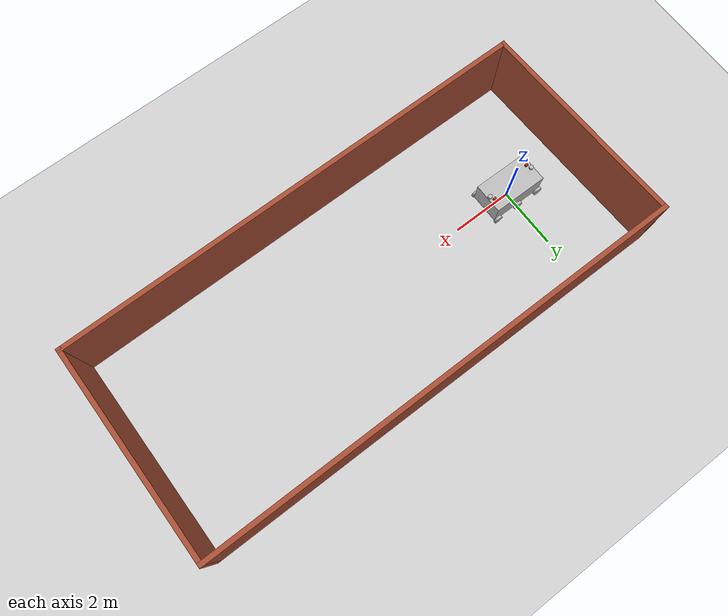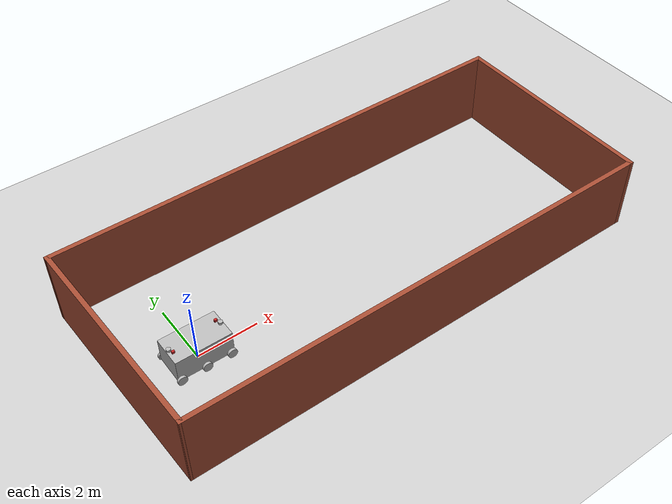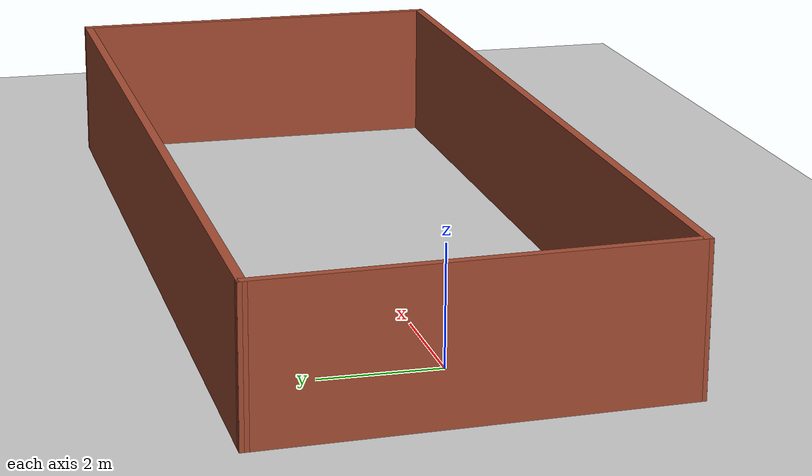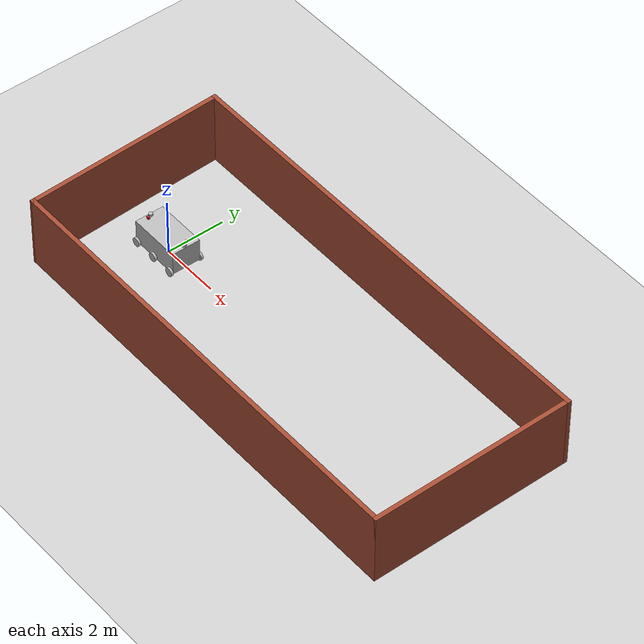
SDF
<sdf version="1.7">
 <world name="default">
  <light name="sun" type="directional">
   <pose>0 0 10 0 -0 0</pose>
   <diffuse>0.8 0.8 0.8 1</diffuse>
   <specular>0.2 0.2 0.2 1</specular>
   <attenuation>
    <range>1000</range>
    <constant>0.9</constant>
    <linear>0.01</linear>
    <quadratic>0.001</quadratic>
   </attenuation>
   <direction>-0.5 0.1 -0.9</direction>
   <spot><inner_angle>0</inner_angle><outer_angle>0</outer_angle><falloff>0</falloff></spot>
  </light>
  <model name="ground_plane">
   <static>1</static>
   <link name="link">
    <collision name="collision">
     <geometry><plane><normal>0 0 1</normal><size>100 100</size></plane></geometry>
     <surface>
      <contact><collide_bitmask>65535</collide_bitmask></contact>
      <friction><ode><mu>100</mu><mu2>50</mu2></ode></friction>
     </surface>
    </collision>
    <visual name="visual">
     <cast_shadows>0</cast_shadows>
     <geometry><plane><normal>0 0 1</normal><size>100 100</size></plane></geometry>
     <material>
      <script><uri>file://media/materials/scripts/gazebo.material</uri><name>Gazebo/Grey</name></script>
     </material>
    </visual>
   </link>
  </model>
  <gravity>0 0 -9.8</gravity>
  <magnetic_field>6e-06 2.3e-05 -4.2e-05</magnetic_field>
  <atmosphere type="adiabatic"/>
  <physics type="ode">
   <max_step_size>0.001</max_step_size>
   <real_time_factor>1</real_time_factor>
   <real_time_update_rate>1000</real_time_update_rate>
  </physics>
  <scene><ambient>0.4 0.4 0.4 1</ambient><background>0.7 0.7 0.7 1</background><shadows>1</shadows></scene>
  <audio><device>default</device></audio>
  <spherical_coordinates>
   <surface_model>EARTH_WGS84</surface_model>
   <latitude_deg>0</latitude_deg>
   <longitude_deg>0</longitude_deg>
   <elevation>0</elevation>
   <heading_deg>0</heading_deg>
  </spherical_coordinates>
  <model name="my_robot">
   <link name="base_footprint">
    <inertial>
     <pose>0 0 0.000732 0 -0 0</pose>
     <mass>120.2</mass>
     <inertia>
      <ixx>12.0387</ixx>
      <ixy>0</ixy>
      <ixz>1.01601e-20</ixz>
      <iyy>12.1732</iyy>
      <iyz>0</iyz>
      <izz>20.1345</izz>
     </inertia>
    </inertial>
    <collision name="base_footprint_fixed_joint_lump__base_link_collision">
     <geometry><box><size>1.8 1 0.8</size></box></geometry>
    </collision>
    <collision name="base_footprint_fixed_joint_lump__lidar_back_collision_1">
     <pose>-0.82 0 0.44 0 -0 3.14159</pose>
     <geometry><cylinder><length>0.08</length><radius>0.07</radius></cylinder></geometry>
    </collision>
    <collision name="base_footprint_fixed_joint_lump__lidar_front_collision_2">
     <pose>0.82 0 0.44 0 -0 0</pose>
     <geometry><cylinder><length>0.08</length><radius>0.07</radius></cylinder></geometry>
    </collision>
    <visual name="base_footprint_fixed_joint_lump__base_link_visual">
     <geometry><box><size>1.8 1 0.8</size></box></geometry>
    </visual>
    <visual name="base_footprint_fixed_joint_lump__camera_back_visual_1">
     <pose>-0.75 -0.14 0.44 0 -0 3.14159</pose>
     <geometry><box><size>0.09 0.07 0.08</size></box></geometry>
     <material>
      <script><name>Gazebo/Red</name><uri>file://media/materials/scripts/gazebo.material</uri></script>
     </material>
    </visual>
    <visual name="base_footprint_fixed_joint_lump__camera_front_visual_2">
     <pose>0.75 0.14 0.44 0 -0 0</pose>
     <geometry><box><size>0.09 0.07 0.08</size></box></geometry>
     <material>
      <script><name>Gazebo/Red</name><uri>file://media/materials/scripts/gazebo.material</uri></script>
     </material>
    </visual>
    <visual name="base_footprint_fixed_joint_lump__lidar_back_visual_3">
     <pose>-0.82 0 0.44 0 -0 3.14159</pose>
     <geometry><cylinder><length>0.08</length><radius>0.07</radius></cylinder></geometry>
    </visual>
    <visual name="base_footprint_fixed_joint_lump__lidar_front_visual_4">
     <pose>0.82 0 0.44 0 -0 0</pose>
     <geometry><cylinder><length>0.08</length><radius>0.07</radius></cylinder></geometry>
    </visual>
    <sensor name="camera_sensor" type="camera">
     <visualize>1</visualize>
     <update_rate>10</update_rate>
     <plugin name="camera_controller_rear" filename="gazebo_ros_ray_sensor.so">
      <frame_name>camera_back</frame_name>
      <image_topic_name>/camera_front/image_raw</image_topic_name>
      <camera_info_topic_name>/camera_front/camera_info</camera_info_topic_name>
     </plugin>
     <pose>-0.75 -0.14 0.44 0 -0 3.14159</pose>
     <camera>
      <horizontal_fov>1.047</horizontal_fov>
      <image><width>320</width><height>240</height></image>
      <clip><near>0.1</near><far>100</far></clip>
     </camera>
    </sensor>
    <sensor name="camera_sensor" type="camera">
     <visualize>1</visualize>
     <update_rate>10</update_rate>
     <plugin name="camera_controller_front" filename="libgazebo_ros_camera.so">
      <frame_name>camera_front</frame_name>
      <image_topic_name>image_raw</image_topic_name>
     </plugin>
     <pose>0.75 0.14 0.44 0 -0 0</pose>
     <camera>
      <horizontal_fov>1.047</horizontal_fov>
      <image><width>320</width><height>240</height></image>
      <clip><near>0.1</near><far>100</far></clip>
     </camera>
    </sensor>
    <sensor name="rear_lidar_sensor" type="gpu_ray">
     <visualize>1</visualize>
     <update_rate>10</update_rate>
     <ray>
      <scan>
       <horizontal>
        <samples>720</samples>
        <resolution>1</resolution>
        <min_angle>-1.047</min_angle>
        <max_angle>1.047</max_angle>
       </horizontal>
       <vertical><samples>1</samples><min_angle>0</min_angle><max_angle>0</max_angle></vertical>
      </scan>
      <range><min>0.1</min><max>10</max><resolution>0.01</resolution></range>
      <noise><type>gaussian</type><mean>0</mean><stddev>0.01</stddev></noise>
     </ray>
     <plugin name="rear_lidar_plugin" filename="libgazebo_ros_ray_sensor.so">
      <topicName>/lidar_back/scan</topicName>
      <frameName>lidar_back</frameName>
      <updateRate>10.0</updateRate>
     </plugin>
     <pose>-0.82 0 0.44 0 -0 3.14159</pose>
    </sensor>
    <sensor name="front_lidar_sensor" type="gpu_ray">
     <visualize>1</visualize>
     <update_rate>10</update_rate>
     <ray>
      <scan>
       <horizontal>
        <samples>720</samples>
        <resolution>1</resolution>
        <min_angle>-1.047</min_angle>
        <max_angle>1.047</max_angle>
       </horizontal>
       <vertical><samples>1</samples><min_angle>0</min_angle><max_angle>0</max_angle></vertical>
      </scan>
      <range><min>0.1</min><max>10</max><resolution>0.01</resolution></range>
      <noise><type>gaussian</type><mean>0</mean><stddev>0.01</stddev></noise>
     </ray>
     <plugin name="front_lidar_plugin" filename="libgazebo_ros_ray_sensor.so">
      <topicName>/lidar_front/scan</topicName>
      <frameName>lidar_front</frameName>
      <update_rate>10.0</update_rate>
     </plugin>
     <pose>0.82 0 0.44 0 -0 0</pose>
    </sensor>
   </link>
   <joint name="joint_wheel_left_0" type="revolute">
    <pose relative_to="base_footprint">-0.8 -0.55 -0.35 0 -0 1.57</pose>
    <parent>base_footprint</parent>
    <child>wheel_left_0</child>
    <axis>
     <xyz>1 0 0</xyz>
     <limit><lower>-1e+16</lower><upper>1e+16</upper></limit>
     <dynamics><spring_reference>0</spring_reference><spring_stiffness>0</spring_stiffness></dynamics>
    </axis>
   </joint>
   <link name="wheel_left_0">
    <pose relative_to="joint_wheel_left_0">0 0 0 0 -0 0</pose>
    <inertial>
     <mass>5</mass>
     <inertia><ixx>0.1</ixx><ixy>0</ixy><ixz>0</ixz><iyy>0.1</iyy><iyz>0</iyz><izz>0.2</izz></inertia>
    </inertial>
    <collision name="wheel_left_0_collision">
     <pose>0 0 0 3.14159 1.57079 3.14159</pose>
     <geometry><cylinder><length>0.08</length><radius>0.15</radius></cylinder></geometry>
    </collision>
    <visual name="wheel_left_0_visual">
     <pose>0 0 0 3.14159 1.57079 3.14159</pose>
     <geometry><cylinder><length>0.08</length><radius>0.15</radius></cylinder></geometry>
    </visual>
   </link>
   <joint name="joint_wheel_left_1" type="revolute">
    <pose relative_to="base_footprint">0 -0.55 -0.35 0 -0 1.57</pose>
    <parent>base_footprint</parent>
    <child>wheel_left_1</child>
    <axis>
     <xyz>1 0 0</xyz>
     <limit><lower>-1e+16</lower><upper>1e+16</upper></limit>
     <dynamics><spring_reference>0</spring_reference><spring_stiffness>0</spring_stiffness></dynamics>
    </axis>
   </joint>
   <link name="wheel_left_1">
    <pose relative_to="joint_wheel_left_1">0 0 0 0 -0 0</pose>
    <inertial>
     <mass>5</mass>
     <inertia><ixx>0.1</ixx><ixy>0</ixy><ixz>0</ixz><iyy>0.1</iyy><iyz>0</iyz><izz>0.2</izz></inertia>
    </inertial>
    <collision name="wheel_left_1_collision">
     <pose>0 0 0 3.14159 1.57079 3.14159</pose>
     <geometry><cylinder><length>0.08</length><radius>0.15</radius></cylinder></geometry>
    </collision>
    <visual name="wheel_left_1_visual">
     <pose>0 0 0 3.14159 1.57079 3.14159</pose>
     <geometry><cylinder><length>0.08</length><radius>0.15</radius></cylinder></geometry>
    </visual>
   </link>
   <joint name="joint_wheel_left_2" type="revolute">
    <pose relative_to="base_footprint">0.8 -0.55 -0.35 0 -0 1.57</pose>
    <parent>base_footprint</parent>
    <child>wheel_left_2</child>
    <axis>
     <xyz>1 0 0</xyz>
     <limit><lower>-1e+16</lower><upper>1e+16</upper></limit>
     <dynamics><spring_reference>0</spring_reference><spring_stiffness>0</spring_stiffness></dynamics>
    </axis>
   </joint>
   <link name="wheel_left_2">
    <pose relative_to="joint_wheel_left_2">0 0 0 0 -0 0</pose>
    <inertial>
     <mass>5</mass>
     <inertia><ixx>0.1</ixx><ixy>0</ixy><ixz>0</ixz><iyy>0.1</iyy><iyz>0</iyz><izz>0.2</izz></inertia>
    </inertial>
    <collision name="wheel_left_2_collision">
     <pose>0 0 0 3.14159 1.57079 3.14159</pose>
     <geometry><cylinder><length>0.08</length><radius>0.15</radius></cylinder></geometry>
    </collision>
    <visual name="wheel_left_2_visual">
     <pose>0 0 0 3.14159 1.57079 3.14159</pose>
     <geometry><cylinder><length>0.08</length><radius>0.15</radius></cylinder></geometry>
    </visual>
   </link>
   <joint name="joint_wheel_right_0" type="revolute">
    <pose relative_to="base_footprint">0.8 0.55 -0.35 0 -0 1.57</pose>
    <parent>base_footprint</parent>
    <child>wheel_right_0</child>
    <axis>
     <xyz>1 0 0</xyz>
     <limit><lower>-1e+16</lower><upper>1e+16</upper></limit>
     <dynamics><spring_reference>0</spring_reference><spring_stiffness>0</spring_stiffness></dynamics>
    </axis>
   </joint>
   <link name="wheel_right_0">
    <pose relative_to="joint_wheel_right_0">0 0 0 0 -0 0</pose>
    <inertial>
     <mass>5</mass>
     <inertia><ixx>0.1</ixx><ixy>0</ixy><ixz>0</ixz><iyy>0.1</iyy><iyz>0</iyz><izz>0.2</izz></inertia>
    </inertial>
    <collision name="wheel_right_0_collision">
     <pose>0 0 0 3.14159 1.57079 3.14159</pose>
     <geometry><cylinder><length>0.08</length><radius>0.15</radius></cylinder></geometry>
    </collision>
    <visual name="wheel_right_0_visual">
     <pose>0 0 0 3.14159 1.57079 3.14159</pose>
     <geometry><cylinder><length>0.08</length><radius>0.15</radius></cylinder></geometry>
    </visual>
   </link>
   <joint name="joint_wheel_right_1" type="revolute">
    <pose relative_to="base_footprint">0 0.55 -0.35 0 -0 1.57</pose>
    <parent>base_footprint</parent>
    <child>wheel_right_1</child>
    <axis>
     <xyz>1 0 0</xyz>
     <limit><lower>-1e+16</lower><upper>1e+16</upper></limit>
     <dynamics><spring_reference>0</spring_reference><spring_stiffness>0</spring_stiffness></dynamics>
    </axis>
   </joint>
   <link name="wheel_right_1">
    <pose relative_to="joint_wheel_right_1">0 0 0 0 -0 0</pose>
    <inertial>
     <mass>5</mass>
     <inertia><ixx>0.1</ixx><ixy>0</ixy><ixz>0</ixz><iyy>0.1</iyy><iyz>0</iyz><izz>0.2</izz></inertia>
    </inertial>
    <collision name="wheel_right_1_collision">
     <pose>0 0 0 3.14159 1.57079 3.14159</pose>
     <geometry><cylinder><length>0.08</length><radius>0.15</radius></cylinder></geometry>
    </collision>
    <visual name="wheel_right_1_visual">
     <pose>0 0 0 3.14159 1.57079 3.14159</pose>
     <geometry><cylinder><length>0.08</length><radius>0.15</radius></cylinder></geometry>
    </visual>
   </link>
   <joint name="joint_wheel_right_2" type="revolute">
    <pose relative_to="base_footprint">-0.8 0.55 -0.35 0 -0 1.57</pose>
    <parent>base_footprint</parent>
    <child>wheel_right_2</child>
    <axis>
     <xyz>1 0 0</xyz>
     <limit><lower>-1e+16</lower><upper>1e+16</upper></limit>
     <dynamics><spring_reference>0</spring_reference><spring_stiffness>0</spring_stiffness></dynamics>
    </axis>
   </joint>
   <link name="wheel_right_2">
    <pose relative_to="joint_wheel_right_2">0 0 0 0 -0 0</pose>
    <inertial>
     <mass>5</mass>
     <inertia><ixx>0.1</ixx><ixy>0</ixy><ixz>0</ixz><iyy>0.1</iyy><iyz>0</iyz><izz>0.2</izz></inertia>
    </inertial>
    <collision name="wheel_right_2_collision">
     <pose>0 0 0 3.14159 1.57079 3.14159</pose>
     <geometry><cylinder><length>0.08</length><radius>0.15</radius></cylinder></geometry>
    </collision>
    <visual name="wheel_right_2_visual">
     <pose>0 0 0 3.14159 1.57079 3.14159</pose>
     <geometry><cylinder><length>0.08</length><radius>0.15</radius></cylinder></geometry>
    </visual>
   </link>
   <static>0</static>
   <plugin name="diff_drive_controller" filename="libgazebo_ros_diff_drive.so">
    <update_rate>50</update_rate>
    <left_joint>joint_wheel_left_0</left_joint>
    <right_joint>joint_wheel_right_0</right_joint>
    <wheel_separation>0.9</wheel_separation>
    <wheel_diameter>0.2</wheel_diameter>
    <publish_odom>1</publish_odom>
    <publish_odom_tf>1</publish_odom_tf>
    <publish_wheel_tf>1</publish_wheel_tf>
    <odometry_topic>odom</odometry_topic>
    <odometry_frame>odom</odometry_frame>
    <robot_base_frame>base_footprint</robot_base_frame>
   </plugin>
   <pose>0.000966 -0.036712 0.5 0 0 -0.004634</pose>
  </model>
  <model name="Untitled">
   <pose>5.579 0.146625 0 0 -0 0</pose>
   <link name="Wall_0">
    <collision name="Wall_0_Collision">
     <geometry><box><size>15.75 0.15 2.5</size></box></geometry>
     <pose>0 0 1.25 0 -0 0</pose>
    </collision>
    <visual name="Wall_0_Visual">
     <pose>0 0 1.25 0 -0 0</pose>
     <geometry><box><size>15.75 0.15 2.5</size></box></geometry>
     <material>
      <script><uri>file://media/materials/scripts/gazebo.material</uri><name>Gazebo/Bricks</name></script>
      <ambient>1 1 1 1</ambient>
     </material>
     <meta><layer>0</layer></meta>
    </visual>
    <pose>0.126342 -3.425 0 0 -0 0</pose>
   </link>
   <link name="Wall_1">
    <collision name="Wall_1_Collision">
     <geometry><box><size>7 0.15 2.5</size></box></geometry>
     <pose>0 0 1.25 0 -0 0</pose>
    </collision>
    <visual name="Wall_1_Visual">
     <pose>0 0 1.25 0 -0 0</pose>
     <geometry><box><size>7 0.15 2.5</size></box></geometry>
     <material>
      <script><uri>file://media/materials/scripts/gazebo.material</uri><name>Gazebo/Bricks</name></script>
      <ambient>1 1 1 1</ambient>
     </material>
     <meta><layer>0</layer></meta>
    </visual>
    <pose>7.92634 -0 0 0 -0 1.5708</pose>
   </link>
   <link name="Wall_2">
    <collision name="Wall_2_Collision">
     <geometry><box><size>16 0.15 2.5</size></box></geometry>
     <pose>0 0 1.25 0 -0 0</pose>
    </collision>
    <visual name="Wall_2_Visual">
     <pose>0 0 1.25 0 -0 0</pose>
     <geometry><box><size>16 0.15 2.5</size></box></geometry>
     <material>
      <script><uri>file://media/materials/scripts/gazebo.material</uri><name>Gazebo/Bricks</name></script>
      <ambient>1 1 1 1</ambient>
     </material>
     <meta><layer>0</layer></meta>
    </visual>
    <pose>0.001342 3.425 0 0 -0 3.14159</pose>
   </link>
   <link name="Wall_3">
    <collision name="Wall_3_Collision">
     <geometry><box><size>7.00456 0.15 2.5</size></box></geometry>
     <pose>0 0 1.25 0 -0 0</pose>
    </collision>
    <visual name="Wall_3_Visual">
     <pose>0 0 1.25 0 -0 0</pose>
     <geometry><box><size>7.00456 0.15 2.5</size></box></geometry>
     <material>
      <script><uri>file://media/materials/scripts/gazebo.material</uri><name>Gazebo/Bricks</name></script>
      <ambient>1 1 1 1</ambient>
     </material>
     <meta><layer>0</layer></meta>
    </visual>
    <pose>-7.79866 -0 0 0 -0 -1.53432</pose>
   </link>
   <static>1</static>
  </model>
 </world>
</sdf>
